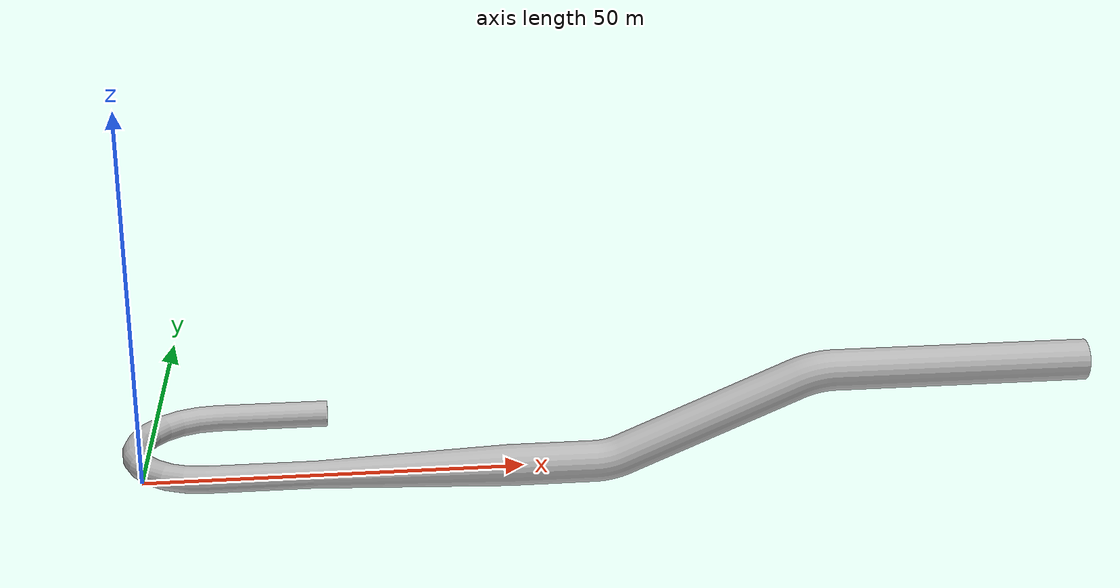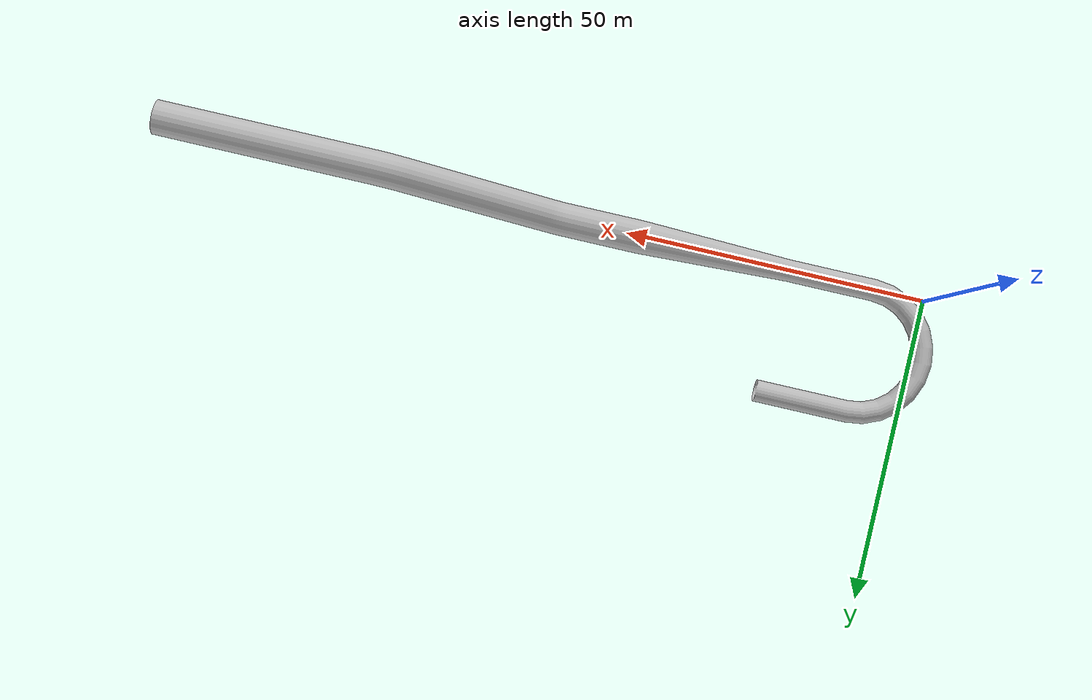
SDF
<?xml version='1.0'?>
<sdf version='1.5'>
  <model name="carters_penstock">
    <static>true</static>
    <link name='penstock'>
      <pose>0 0 0 0 0 0</pose>
	  <collision name='collision'>
        <geometry>
          <mesh>
            <uri>model://carters_penstock/meshes/CartersAccurate.dae</uri>
          </mesh>
        </geometry>
      </collision>
      <visual name='visual'>
        <geometry>
          <mesh>
            <uri>model://carters_penstock/meshes/CartersAccurate.dae</uri>
          </mesh>
        </geometry>
      </visual>
	</link>
  </model>
</sdf>
